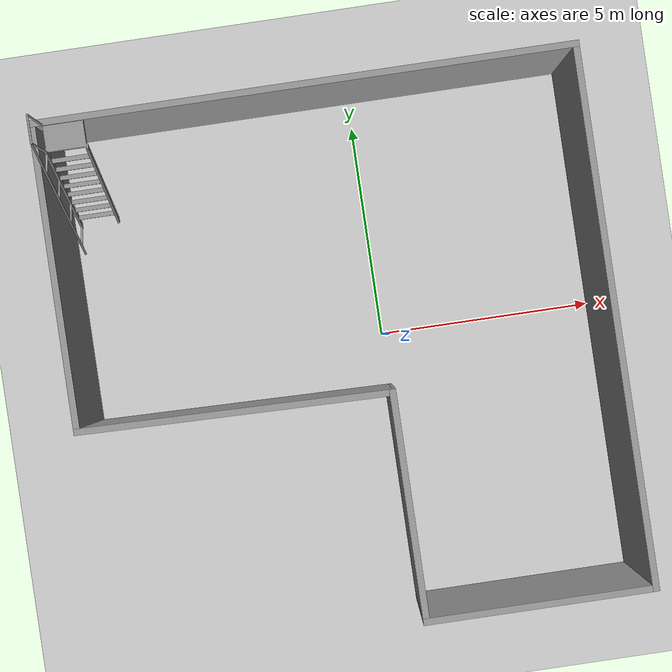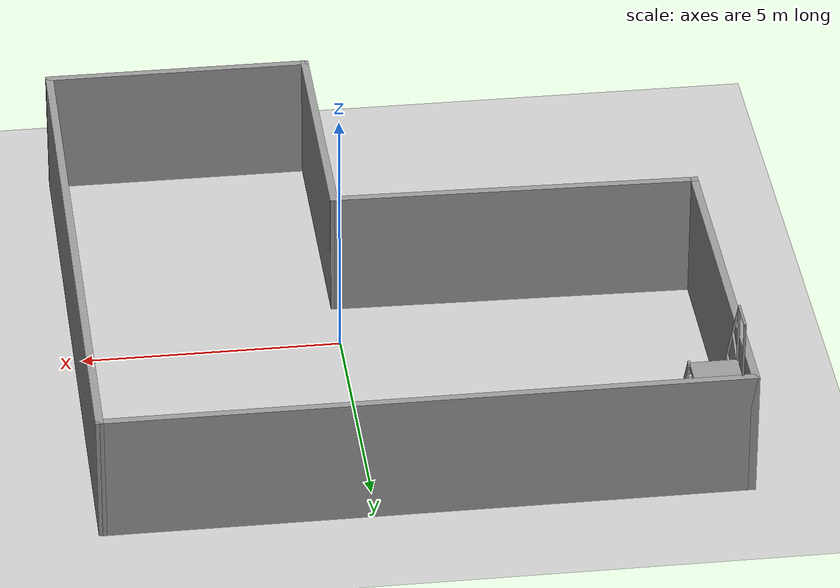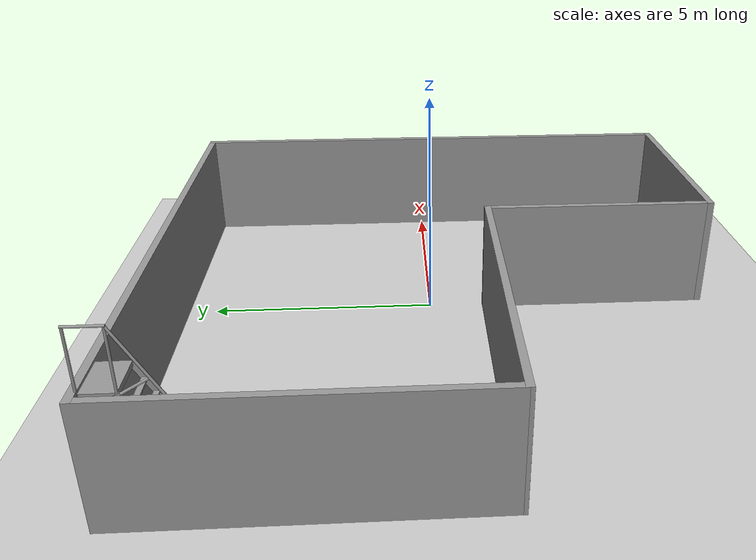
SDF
<sdf version="1.6">
 <world name="default">
  <model name="ground_plane">
   <static>1</static>
   <link name="link">
    <collision name="collision">
     <geometry><plane><normal>0 0 1</normal><size>100 100</size></plane></geometry>
     <surface>
      <contact><collide_bitmask>65535</collide_bitmask></contact>
      <friction><ode><mu>100</mu><mu2>50</mu2></ode></friction>
     </surface>
    </collision>
    <visual name="visual">
     <cast_shadows>0</cast_shadows>
     <geometry><plane><normal>0 0 1</normal><size>100 100</size></plane></geometry>
     <material>
      <script><uri>file://media/materials/scripts/gazebo.material</uri><name>Gazebo/Grey</name></script>
     </material>
    </visual>
   </link>
  </model>
  <model name="Untitled">
   <pose>-0.983671 -0.347504 0 0 -0 0</pose>
   <link name="Wall_1">
    <collision name="Wall_1_Collision">
     <geometry><box><size>12.25 0.15 2.5</size></box></geometry>
     <pose>0 0 1.25 0 -0 0</pose>
    </collision>
    <visual name="Wall_1_Visual">
     <pose>0 0 1.25 0 -0 0</pose>
     <geometry><box><size>12.25 0.15 2.5</size></box></geometry>
     <material>
      <script><uri>file://media/materials/scripts/gazebo.material</uri><name>Gazebo/Grey</name></script>
      <ambient>1 1 1 1</ambient>
     </material>
     <meta><layer>0</layer></meta>
    </visual>
    <pose>0.000795 6.05 0 0 -0 0</pose>
   </link>
   <link name="Wall_2">
    <collision name="Wall_2_Collision">
     <geometry><box><size>12.25 0.15 2.5</size></box></geometry>
     <pose>0 0 1.25 0 -0 0</pose>
    </collision>
    <visual name="Wall_2_Visual">
     <pose>0 0 1.25 0 -0 0</pose>
     <geometry><box><size>12.25 0.15 2.5</size></box></geometry>
     <material>
      <script><uri>file://media/materials/scripts/gazebo.material</uri><name>Gazebo/Grey</name></script>
      <ambient>1 1 1 1</ambient>
     </material>
     <meta><layer>0</layer></meta>
    </visual>
    <pose>6.05079 0 0 0 0 -1.5708</pose>
   </link>
   <link name="Wall_3">
    <collision name="Wall_3_Collision">
     <geometry><box><size>5.25 0.15 2.5</size></box></geometry>
     <pose>0 0 1.25 0 -0 0</pose>
    </collision>
    <visual name="Wall_3_Visual">
     <pose>0 0 1.25 0 -0 0</pose>
     <geometry><box><size>5.25 0.15 2.5</size></box></geometry>
     <material>
      <script><uri>file://media/materials/scripts/gazebo.material</uri><name>Gazebo/Grey</name></script>
      <ambient>1 1 1 1</ambient>
     </material>
     <meta><layer>0</layer></meta>
    </visual>
    <pose>3.5008 -6.05 0 0 -0 3.14159</pose>
   </link>
   <link name="Wall_4">
    <collision name="Wall_4_Collision">
     <geometry><box><size>5.25 0.15 2.5</size></box></geometry>
     <pose>0 0 1.25 0 -0 0</pose>
    </collision>
    <visual name="Wall_4_Visual">
     <pose>0 0 1.25 0 -0 0</pose>
     <geometry><box><size>5.25 0.15 2.5</size></box></geometry>
     <material>
      <script><uri>file://media/materials/scripts/gazebo.material</uri><name>Gazebo/Grey</name></script>
      <ambient>1 1 1 1</ambient>
     </material>
     <meta><layer>0</layer></meta>
    </visual>
    <pose>0.950795 -3.5 0 0 -0 1.5708</pose>
   </link>
   <link name="Wall_5">
    <collision name="Wall_5_Collision">
     <geometry><box><size>7.15161 0.15 2.5</size></box></geometry>
     <pose>0 0 1.25 0 -0 0</pose>
    </collision>
    <visual name="Wall_5_Visual">
     <pose>0 0 1.25 0 -0 0</pose>
     <geometry><box><size>7.15161 0.15 2.5</size></box></geometry>
     <material>
      <script><uri>file://media/materials/scripts/gazebo.material</uri><name>Gazebo/Grey</name></script>
      <ambient>1 1 1 1</ambient>
     </material>
     <meta><layer>0</layer></meta>
    </visual>
    <pose>-2.54921 -0.875 0 0 -0 3.12017</pose>
   </link>
   <link name="Wall_6">
    <collision name="Wall_6_Collision">
     <geometry><box><size>7 0.15 2.5</size></box></geometry>
     <pose>0 0 1.25 0 -0 0</pose>
    </collision>
    <visual name="Wall_6_Visual">
     <pose>0 0 1.25 0 -0 0</pose>
     <geometry><box><size>7 0.15 2.5</size></box></geometry>
     <material>
      <script><uri>file://media/materials/scripts/gazebo.material</uri><name>Gazebo/Grey</name></script>
      <ambient>1 1 1 1</ambient>
     </material>
     <meta><layer>0</layer></meta>
    </visual>
    <pose>-6.0492 2.625 0 0 -0 1.5708</pose>
   </link>
   <static>1</static>
  </model>
  <model name="ladder_60deg_1rails">
   <static>1</static>
   <link name="step0">
    <pose>0 0.15396 0.266667 0 -0 0</pose>
    <inertial>
     <mass>9.75482</mass>
     <inertia>
      <ixx>0.00957124</ixx>
      <iyy>0.65963</iyy>
      <izz>0.666842</izz>
      <ixy>0</ixy>
      <ixz>0</ixz>
      <iyz>0</iyz>
     </inertia>
    </inertial>
    <collision name="collision"><geometry><box><size>0.9 0.1016 0.0381</size></box></geometry></collision>
    <visual name="visual">
     <geometry><box><size>0.9 0.1016 0.0381</size></box></geometry>
     <material>
      <script><uri>file://media/materials/scripts/gazebo.material</uri><name>Gazebo/Grey</name></script>
     </material>
    </visual>
   </link>
   <link name="step1">
    <pose>0 0.30792 0.533333 0 -0 0</pose>
    <inertial>
     <mass>9.75482</mass>
     <inertia>
      <ixx>0.00957124</ixx>
      <iyy>0.65963</iyy>
      <izz>0.666842</izz>
      <ixy>0</ixy>
      <ixz>0</ixz>
      <iyz>0</iyz>
     </inertia>
    </inertial>
    <collision name="collision"><geometry><box><size>0.9 0.1016 0.0381</size></box></geometry></collision>
    <visual name="visual">
     <geometry><box><size>0.9 0.1016 0.0381</size></box></geometry>
     <material>
      <script><uri>file://media/materials/scripts/gazebo.material</uri><name>Gazebo/Grey</name></script>
     </material>
    </visual>
   </link>
   <link name="step2">
    <pose>0 0.46188 0.8 0 -0 0</pose>
    <inertial>
     <mass>9.75482</mass>
     <inertia>
      <ixx>0.00957124</ixx>
      <iyy>0.65963</iyy>
      <izz>0.666842</izz>
      <ixy>0</ixy>
      <ixz>0</ixz>
      <iyz>0</iyz>
     </inertia>
    </inertial>
    <collision name="collision"><geometry><box><size>0.9 0.1016 0.0381</size></box></geometry></collision>
    <visual name="visual">
     <geometry><box><size>0.9 0.1016 0.0381</size></box></geometry>
     <material>
      <script><uri>file://media/materials/scripts/gazebo.material</uri><name>Gazebo/Grey</name></script>
     </material>
    </visual>
   </link>
   <link name="step3">
    <pose>0 0.61584 1.06667 0 -0 0</pose>
    <inertial>
     <mass>9.75482</mass>
     <inertia>
      <ixx>0.00957124</ixx>
      <iyy>0.65963</iyy>
      <izz>0.666842</izz>
      <ixy>0</ixy>
      <ixz>0</ixz>
      <iyz>0</iyz>
     </inertia>
    </inertial>
    <collision name="collision"><geometry><box><size>0.9 0.1016 0.0381</size></box></geometry></collision>
    <visual name="visual">
     <geometry><box><size>0.9 0.1016 0.0381</size></box></geometry>
     <material>
      <script><uri>file://media/materials/scripts/gazebo.material</uri><name>Gazebo/Grey</name></script>
     </material>
    </visual>
   </link>
   <link name="step4">
    <pose>0 0.7698 1.33333 0 -0 0</pose>
    <inertial>
     <mass>9.75482</mass>
     <inertia>
      <ixx>0.00957124</ixx>
      <iyy>0.65963</iyy>
      <izz>0.666842</izz>
      <ixy>0</ixy>
      <ixz>0</ixz>
      <iyz>0</iyz>
     </inertia>
    </inertial>
    <collision name="collision"><geometry><box><size>0.9 0.1016 0.0381</size></box></geometry></collision>
    <visual name="visual">
     <geometry><box><size>0.9 0.1016 0.0381</size></box></geometry>
     <material>
      <script><uri>file://media/materials/scripts/gazebo.material</uri><name>Gazebo/Grey</name></script>
     </material>
    </visual>
   </link>
   <link name="step5">
    <pose>0 0.92376 1.6 0 -0 0</pose>
    <inertial>
     <mass>9.75482</mass>
     <inertia>
      <ixx>0.00957124</ixx>
      <iyy>0.65963</iyy>
      <izz>0.666842</izz>
      <ixy>0</ixy>
      <ixz>0</ixz>
      <iyz>0</iyz>
     </inertia>
    </inertial>
    <collision name="collision"><geometry><box><size>0.9 0.1016 0.0381</size></box></geometry></collision>
    <visual name="visual">
     <geometry><box><size>0.9 0.1016 0.0381</size></box></geometry>
     <material>
      <script><uri>file://media/materials/scripts/gazebo.material</uri><name>Gazebo/Grey</name></script>
     </material>
    </visual>
   </link>
   <link name="step6">
    <pose>0 1.07772 1.86667 0 -0 0</pose>
    <inertial>
     <mass>9.75482</mass>
     <inertia>
      <ixx>0.00957124</ixx>
      <iyy>0.65963</iyy>
      <izz>0.666842</izz>
      <ixy>0</ixy>
      <ixz>0</ixz>
      <iyz>0</iyz>
     </inertia>
    </inertial>
    <collision name="collision"><geometry><box><size>0.9 0.1016 0.0381</size></box></geometry></collision>
    <visual name="visual">
     <geometry><box><size>0.9 0.1016 0.0381</size></box></geometry>
     <material>
      <script><uri>file://media/materials/scripts/gazebo.material</uri><name>Gazebo/Grey</name></script>
     </material>
    </visual>
   </link>
   <link name="step7">
    <pose>0 1.23168 2.13333 0 -0 0</pose>
    <inertial>
     <mass>9.75482</mass>
     <inertia>
      <ixx>0.00957124</ixx>
      <iyy>0.65963</iyy>
      <izz>0.666842</izz>
      <ixy>0</ixy>
      <ixz>0</ixz>
      <iyz>0</iyz>
     </inertia>
    </inertial>
    <collision name="collision"><geometry><box><size>0.9 0.1016 0.0381</size></box></geometry></collision>
    <visual name="visual">
     <geometry><box><size>0.9 0.1016 0.0381</size></box></geometry>
     <material>
      <script><uri>file://media/materials/scripts/gazebo.material</uri><name>Gazebo/Grey</name></script>
     </material>
    </visual>
   </link>
   <link name="landing">
    <pose>0 1.68564 2.4 0 -0 0</pose>
    <inertial>
     <mass>57.6072</mass>
     <inertia><ixx>1.73518</ixx><iyy>3.89545</iyy><izz>5.6167</izz><ixy>0</ixy><ixz>0</ixz><iyz>0</iyz></inertia>
    </inertial>
    <collision name="collision"><geometry><box><size>0.9 0.6 0.1016</size></box></geometry></collision>
    <visual name="visual">
     <geometry><box><size>0.9 0.6 0.1016</size></box></geometry>
     <material>
      <script><uri>file://media/materials/scripts/gazebo.material</uri><name>Gazebo/Grey</name></script>
     </material>
    </visual>
   </link>
   <link name="left_side_wall">
    <pose>-0.45 0.69282 1.2 1.0472 -0 0</pose>
    <collision name="collision"><geometry><box><size>0.0508 2.85128 0.13</size></box></geometry></collision>
    <visual name="visual">
     <geometry><box><size>0.0508 2.85128 0.13</size></box></geometry>
     <material>
      <script><uri>file://media/materials/scripts/gazebo.material</uri><name>Gazebo/Grey</name></script>
     </material>
    </visual>
   </link>
   <link name="right_side_wall">
    <pose>0.45 0.69282 1.2 1.0472 -0 0</pose>
    <collision name="collision"><geometry><box><size>0.0508 2.85128 0.13</size></box></geometry></collision>
    <visual name="visual">
     <geometry><box><size>0.0508 2.85128 0.13</size></box></geometry>
     <material>
      <script><uri>file://media/materials/scripts/gazebo.material</uri><name>Gazebo/Grey</name></script>
     </material>
    </visual>
   </link>
   <link name="left_railing_long">
    <pose>-0.45 0.34282 1.80622 -0.523599 0 0</pose>
    <collision name="collision">
     <geometry><cylinder><radius>0.02413</radius><length>4.17128</length></cylinder></geometry>
    </collision>
    <visual name="visual">
     <geometry><cylinder><radius>0.02413</radius><length>4.17128</length></cylinder></geometry>
     <material>
      <script><uri>file://media/materials/scripts/gazebo.material</uri><name>Gazebo/Grey</name></script>
     </material>
    </visual>
   </link>
   <link name="left_railing_upright0">
    <pose>-0.45 -0.274963 0.15875 1.0472 -0 0</pose>
    <collision name="collision">
     <geometry><cylinder><radius>0.02413</radius><length>0.541218</length></cylinder></geometry>
    </collision>
    <visual name="visual">
     <geometry><cylinder><radius>0.02413</radius><length>0.541218</length></cylinder></geometry>
     <material>
      <script><uri>file://media/materials/scripts/gazebo.material</uri><name>Gazebo/Grey</name></script>
     </material>
    </visual>
   </link>
   <link name="left_railing_upright1">
    <pose>-0.45 0.186917 0.95875 1.0472 -0 0</pose>
    <collision name="collision">
     <geometry><cylinder><radius>0.02413</radius><length>0.541218</length></cylinder></geometry>
    </collision>
    <visual name="visual">
     <geometry><cylinder><radius>0.02413</radius><length>0.541218</length></cylinder></geometry>
     <material>
      <script><uri>file://media/materials/scripts/gazebo.material</uri><name>Gazebo/Grey</name></script>
     </material>
    </visual>
   </link>
   <link name="left_railing_upright2">
    <pose>-0.45 0.648797 1.75875 1.0472 -0 0</pose>
    <collision name="collision">
     <geometry><cylinder><radius>0.02413</radius><length>0.541218</length></cylinder></geometry>
    </collision>
    <visual name="visual">
     <geometry><cylinder><radius>0.02413</radius><length>0.541218</length></cylinder></geometry>
     <material>
      <script><uri>file://media/materials/scripts/gazebo.material</uri><name>Gazebo/Grey</name></script>
     </material>
    </visual>
   </link>
   <link name="left_railing_upright3">
    <pose>-0.45 1.11068 2.55875 1.0472 -0 0</pose>
    <collision name="collision">
     <geometry><cylinder><radius>0.02413</radius><length>0.541218</length></cylinder></geometry>
    </collision>
    <visual name="visual">
     <geometry><cylinder><radius>0.02413</radius><length>0.541218</length></cylinder></geometry>
     <material>
      <script><uri>file://media/materials/scripts/gazebo.material</uri><name>Gazebo/Grey</name></script>
     </material>
    </visual>
   </link>
   <link name="left_railing_landing_top">
    <pose>-0.45 1.68564 3.61244 1.5708 -0 0</pose>
    <collision name="collision">
     <geometry><cylinder><radius>0.02413</radius><length>0.64826</length></cylinder></geometry>
    </collision>
    <visual name="visual">
     <geometry><cylinder><radius>0.02413</radius><length>0.64826</length></cylinder></geometry>
     <material>
      <script><uri>file://media/materials/scripts/gazebo.material</uri><name>Gazebo/Grey</name></script>
     </material>
    </visual>
   </link>
   <link name="left_railing_landing_upright_0">
    <pose>-0.45 1.38564 3.00622 0 -0 0</pose>
    <collision name="collision">
     <geometry><cylinder><radius>0.02413</radius><length>1.21244</length></cylinder></geometry>
    </collision>
    <visual name="visual">
     <geometry><cylinder><radius>0.02413</radius><length>1.21244</length></cylinder></geometry>
     <material>
      <script><uri>file://media/materials/scripts/gazebo.material</uri><name>Gazebo/Grey</name></script>
     </material>
    </visual>
   </link>
   <link name="left_railing_landing_upright_1">
    <pose>-0.45 1.98564 3.00622 0 -0 0</pose>
    <collision name="collision">
     <geometry><cylinder><radius>0.02413</radius><length>1.21244</length></cylinder></geometry>
    </collision>
    <visual name="visual">
     <geometry><cylinder><radius>0.02413</radius><length>1.21244</length></cylinder></geometry>
     <material>
      <script><uri>file://media/materials/scripts/gazebo.material</uri><name>Gazebo/Grey</name></script>
     </material>
    </visual>
   </link>
   <pose>-6.3605 3.65709 0 0 -0 0</pose>
  </model>
 </world>
</sdf>
